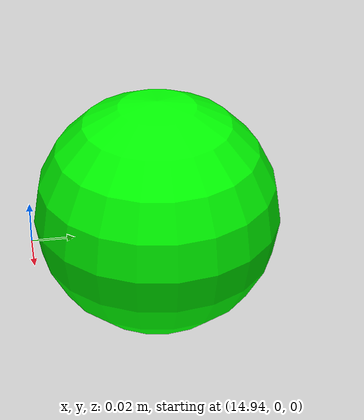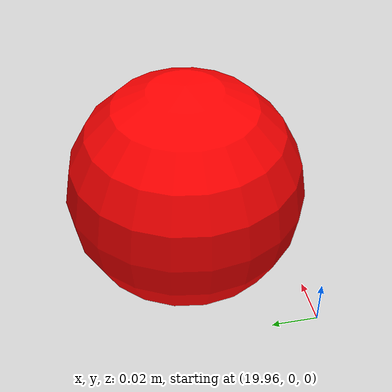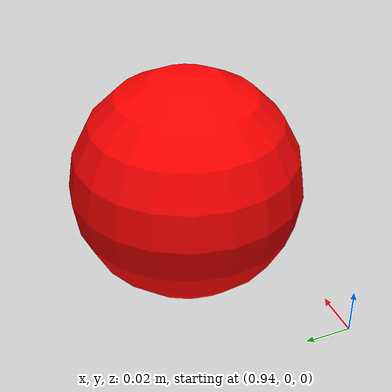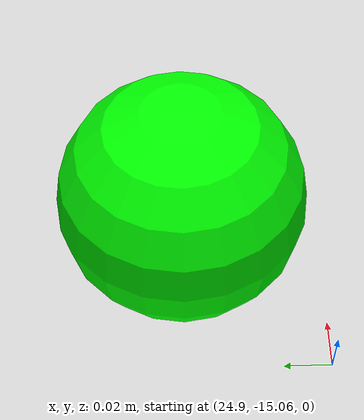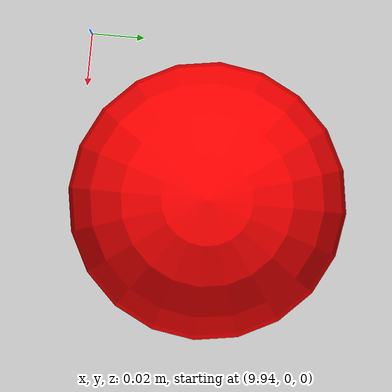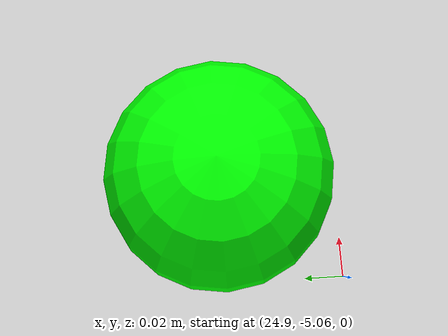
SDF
<sdf version="1.6">
 <world name="default">
  <model name="ground_plane">
   <static>1</static>
   <link name="link">
    <collision name="collision">
     <geometry><plane><normal>0 0 1</normal><size>100 100</size></plane></geometry>
     <surface><friction><ode><mu>100</mu><mu2>50</mu2></ode></friction></surface>
    </collision>
    <visual name="visual">
     <cast_shadows>0</cast_shadows>
     <geometry><plane><normal>0 0 1</normal><size>100 100</size></plane></geometry>
     <material>
      <script><uri>file://media/materials/scripts/gazebo.material</uri><name>Gazebo/Grey</name></script>
     </material>
    </visual>
   </link>
  </model>
  <light name="sun" type="directional">
   <pose>0 0 10 0 -0 0</pose>
   <diffuse>0.8 0.8 0.8 1</diffuse>
   <specular>0.1 0.1 0.1 1</specular>
   <attenuation>
    <range>1000</range>
    <constant>0.9</constant>
    <linear>0.01</linear>
    <quadratic>0.001</quadratic>
   </attenuation>
   <direction>-0.5 0.5 -1</direction>
  </light>
  <gravity>0 0 -9.8</gravity>
  <magnetic_field>6e-06 2.3e-05 -4.2e-05</magnetic_field>
  <atmosphere type="adiabatic"/>
  <physics name="default_physics" default="0" type="ode">
   <max_step_size>0.001</max_step_size>
   <real_time_factor>1</real_time_factor>
   <real_time_update_rate>1000</real_time_update_rate>
  </physics>
  <scene><ambient>0.4 0.4 0.4 1</ambient><background>0.7 0.7 0.7 1</background><shadows>1</shadows></scene>
  <spherical_coordinates>
   <surface_model>EARTH_WGS84</surface_model>
   <latitude_deg>0</latitude_deg>
   <longitude_deg>0</longitude_deg>
   <elevation>0</elevation>
   <heading_deg>0</heading_deg>
  </spherical_coordinates>
  <model name="redball_0">
   <pose>1 0.05 0.05 0 0 0</pose>
   <link name="link">
    <inertial>
     <mass>0.25</mass>
     <inertia><ixx>0.00169</ixx><iyy>0.00169</iyy><izz>0.00169</izz><ixy>0</ixy><ixz>0</ixz><iyz>0</iyz></inertia>
    </inertial>
    <collision name="body_collision"><geometry><sphere><radius>0.05</radius></sphere></geometry></collision>
    <visual name="v1">
     <material>
      <ambient>1 0 0 1.0</ambient>
      <diffuse>1 0 0 1.0</diffuse>
      <specular>1 0 0 1.0</specular>
      <emissive>1 0 0 1.0</emissive>
     </material>
     <geometry><sphere><radius>0.05</radius></sphere></geometry>
    </visual>
   </link>
  </model>
  <model name="greenball_1">
   <static>false</static>
   <pose>5 0.05 0.05 0 0 0</pose>
   <link name="link">
    <inertial>
     <mass>0.25</mass>
     <inertia><ixx>0.00169</ixx><iyy>0.00169</iyy><izz>0.00169</izz><ixy>0</ixy><ixz>0</ixz><iyz>0</iyz></inertia>
    </inertial>
    <collision name="body_collision"><geometry><sphere><radius>0.05</radius></sphere></geometry></collision>
    <visual name="v1">
     <material>
      <ambient>0 1 0 1.0</ambient>
      <diffuse>0 1 0 1.0</diffuse>
      <specular>0 1 0 1.0</specular>
      <emissive>0 1 0 1.0</emissive>
     </material>
     <geometry><sphere><radius>0.05</radius></sphere></geometry>
    </visual>
   </link>
  </model>
  <model name="greenball_2">
   <static>false</static>
   <pose>15 0.05 0.05 0 0 0</pose>
   <link name="link">
    <inertial>
     <mass>0.25</mass>
     <inertia><ixx>0.00169</ixx><iyy>0.00169</iyy><izz>0.00169</izz><ixy>0</ixy><ixz>0</ixz><iyz>0</iyz></inertia>
    </inertial>
    <collision name="body_collision"><geometry><sphere><radius>0.05</radius></sphere></geometry></collision>
    <visual name="v1">
     <material>
      <ambient>0 1 0 1.0</ambient>
      <diffuse>0 1 0 1.0</diffuse>
      <specular>0 1 0 1.0</specular>
      <emissive>0 1 0 1.0</emissive>
     </material>
     <geometry><sphere><radius>0.05</radius></sphere></geometry>
    </visual>
   </link>
  </model>
  <model name="greenball_3">
   <static>false</static>
   <pose>24.95 -5 0.05 0 0 0</pose>
   <link name="link">
    <inertial>
     <mass>0.25</mass>
     <inertia><ixx>0.00169</ixx><iyy>0.00169</iyy><izz>0.00169</izz><ixy>0</ixy><ixz>0</ixz><iyz>0</iyz></inertia>
    </inertial>
    <collision name="body_collision"><geometry><sphere><radius>0.05</radius></sphere></geometry></collision>
    <visual name="v1">
     <material>
      <ambient>0 1 0 1.0</ambient>
      <diffuse>0 1 0 1.0</diffuse>
      <specular>0 1 0 1.0</specular>
      <emissive>0 1 0 1.0</emissive>
     </material>
     <geometry><sphere><radius>0.05</radius></sphere></geometry>
    </visual>
   </link>
  </model>
  <model name="greenball_4">
   <static>false</static>
   <pose>24.95 -15 0.05 0 0 0</pose>
   <link name="link">
    <inertial>
     <mass>0.25</mass>
     <inertia><ixx>0.00169</ixx><iyy>0.00169</iyy><izz>0.00169</izz><ixy>0</ixy><ixz>0</ixz><iyz>0</iyz></inertia>
    </inertial>
    <collision name="body_collision"><geometry><sphere><radius>0.05</radius></sphere></geometry></collision>
    <visual name="v1">
     <material>
      <ambient>0 1 0 1.0</ambient>
      <diffuse>0 1 0 1.0</diffuse>
      <specular>0 1 0 1.0</specular>
      <emissive>0 1 0 1.0</emissive>
     </material>
     <geometry><sphere><radius>0.05</radius></sphere></geometry>
    </visual>
   </link>
  </model>
  <model name="redball_1">
   <static>false</static>
   <pose>10 0.05 0.05 0 0 0</pose>
   <link name="link">
    <inertial>
     <mass>0.25</mass>
     <inertia><ixx>0.00169</ixx><iyy>0.00169</iyy><izz>0.00169</izz><ixy>0</ixy><ixz>0</ixz><iyz>0</iyz></inertia>
    </inertial>
    <collision name="body_collision"><geometry><sphere><radius>0.05</radius></sphere></geometry></collision>
    <visual name="v1">
     <material>
      <ambient>1 0 0 1.0</ambient>
      <diffuse>1 0 0 1.0</diffuse>
      <specular>1 0 0 1.0</specular>
      <emissive>1 0 0 1.0</emissive>
     </material>
     <geometry><sphere><radius>0.05</radius></sphere></geometry>
    </visual>
   </link>
  </model>
  <model name="redball_2">
   <static>false</static>
   <pose>20 0.05 0.05 0 0 0</pose>
   <link name="link">
    <inertial>
     <mass>0.25</mass>
     <inertia><ixx>0.00169</ixx><iyy>0.00169</iyy><izz>0.00169</izz><ixy>0</ixy><ixz>0</ixz><iyz>0</iyz></inertia>
    </inertial>
    <collision name="body_collision"><geometry><sphere><radius>0.05</radius></sphere></geometry></collision>
    <visual name="v1">
     <material>
      <ambient>1 0 0 1.0</ambient>
      <diffuse>1 0 0 1.0</diffuse>
      <specular>1 0 0 1.0</specular>
      <emissive>1 0 0 1.0</emissive>
     </material>
     <geometry><sphere><radius>0.05</radius></sphere></geometry>
    </visual>
   </link>
  </model>
  <model name="redball_3">
   <static>false</static>
   <pose>24.95 -10 0.05 0 0 0</pose>
   <link name="link">
    <inertial>
     <mass>0.25</mass>
     <inertia><ixx>0.00169</ixx><iyy>0.00169</iyy><izz>0.00169</izz><ixy>0</ixy><ixz>0</ixz><iyz>0</iyz></inertia>
    </inertial>
    <collision name="body_collision"><geometry><sphere><radius>0.05</radius></sphere></geometry></collision>
    <visual name="v1">
     <material>
      <ambient>1 0 0 1.0</ambient>
      <diffuse>1 0 0 1.0</diffuse>
      <specular>1 0 0 1.0</specular>
      <emissive>1 0 0 1.0</emissive>
     </material>
     <geometry><sphere><radius>0.05</radius></sphere></geometry>
    </visual>
   </link>
  </model>
  <model name="redball_4">
   <static>false</static>
   <pose>24.95 -20 0.05 0 0 0</pose>
   <link name="link">
    <inertial>
     <mass>0.25</mass>
     <inertia><ixx>0.00169</ixx><iyy>0.00169</iyy><izz>0.00169</izz><ixy>0</ixy><ixz>0</ixz><iyz>0</iyz></inertia>
    </inertial>
    <collision name="body_collision"><geometry><sphere><radius>0.05</radius></sphere></geometry></collision>
    <visual name="v1">
     <material>
      <ambient>1 0 0 1.0</ambient>
      <diffuse>1 0 0 1.0</diffuse>
      <specular>1 0 0 1.0</specular>
      <emissive>1 0 0 1.0</emissive>
     </material>
     <geometry><sphere><radius>0.05</radius></sphere></geometry>
    </visual>
   </link>
  </model>
 </world>
</sdf>
